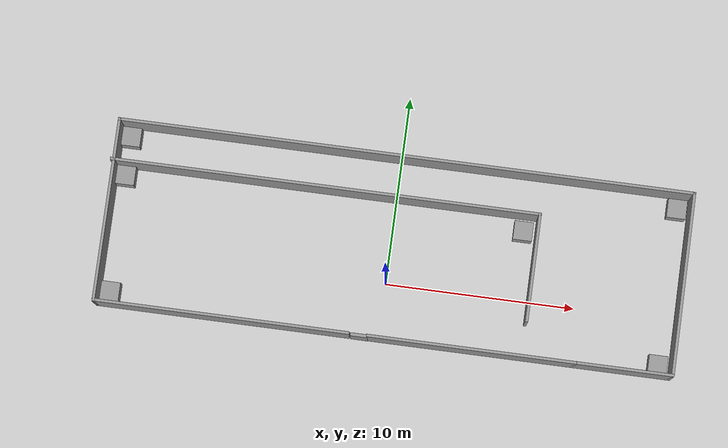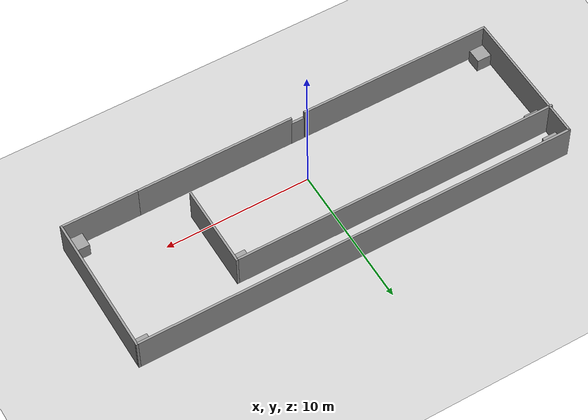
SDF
<sdf version="1.7">
 <world name="default">
  <light name="sun" type="directional">
   <pose>0 0 10 0 -0 0</pose>
   <diffuse>0.8 0.8 0.8 1</diffuse>
   <specular>0.2 0.2 0.2 1</specular>
   <attenuation>
    <range>1000</range>
    <constant>0.9</constant>
    <linear>0.01</linear>
    <quadratic>0.001</quadratic>
   </attenuation>
   <direction>-0.5 0.1 -0.9</direction>
   <spot><inner_angle>0</inner_angle><outer_angle>0</outer_angle><falloff>0</falloff></spot>
  </light>
  <model name="ground_plane">
   <static>1</static>
   <link name="link">
    <collision name="collision">
     <geometry><plane><normal>0 0 1</normal><size>100 100</size></plane></geometry>
     <surface>
      <contact><collide_bitmask>65535</collide_bitmask></contact>
      <friction><ode><mu>100</mu><mu2>50</mu2></ode></friction>
     </surface>
    </collision>
    <visual name="visual">
     <cast_shadows>0</cast_shadows>
     <geometry><plane><normal>0 0 1</normal><size>100 100</size></plane></geometry>
     <material>
      <script><uri>file://media/materials/scripts/gazebo.material</uri><name>Gazebo/Grey</name></script>
     </material>
    </visual>
   </link>
  </model>
  <gravity>0 0 -9.8</gravity>
  <magnetic_field>6e-06 2.3e-05 -4.2e-05</magnetic_field>
  <atmosphere type="adiabatic"/>
  <physics type="ode">
   <max_step_size>0.001</max_step_size>
   <real_time_factor>1</real_time_factor>
   <real_time_update_rate>1000</real_time_update_rate>
  </physics>
  <scene><ambient>0.4 0.4 0.4 1</ambient><background>0.7 0.7 0.7 1</background><shadows>1</shadows></scene>
  <spherical_coordinates>
   <surface_model>EARTH_WGS84</surface_model>
   <latitude_deg>0</latitude_deg>
   <longitude_deg>0</longitude_deg>
   <elevation>0</elevation>
   <heading_deg>0</heading_deg>
  </spherical_coordinates>
  <model name="ssss">
   <pose>0.167742 1.78339 0 0 -0 0</pose>
   <link name="Door_0">
    <collision name="Door_0_Collision">
     <geometry><box><size>0.9 0.17 2</size></box></geometry>
     <pose>0 0 1 0 -0 0</pose>
    </collision>
    <visual name="Door_0_Visual">
     <pose>0 0 1 0 -0 0</pose>
     <geometry><box><size>0.9 0.17 2</size></box></geometry>
     <material>
      <script><uri>file://media/materials/scripts/gazebo.material</uri><name>Gazebo/Grey</name></script>
     </material>
    </visual>
    <pose>-1.19415 -4.80067 0 0 -0 0</pose>
   </link>
   <link name="Wall_0">
    <collision name="Wall_0_Collision">
     <geometry><box><size>11 0.15 2.5</size></box></geometry>
     <pose>0 0 1.25 0 -0 0</pose>
    </collision>
    <visual name="Wall_0_Visual">
     <pose>0 0 1.25 0 -0 0</pose>
     <geometry><box><size>11 0.15 2.5</size></box></geometry>
     <material>
      <script><uri>file://media/materials/scripts/gazebo.material</uri><name>Gazebo/Grey</name></script>
      <ambient>1 1 1 1</ambient>
     </material>
     <meta><layer>0</layer></meta>
    </visual>
    <pose>4.70599 -4.8 0 0 -0 0</pose>
   </link>
   <link name="Wall_1">
    <collision name="Wall_1_Collision">
     <geometry><box><size>5.25 0.15 2.5</size></box></geometry>
     <pose>0 0 1.25 0 -0 0</pose>
    </collision>
    <visual name="Wall_1_Visual">
     <pose>0 0 1.25 0 -0 0</pose>
     <geometry><box><size>5.25 0.15 2.5</size></box></geometry>
     <material>
      <script><uri>file://media/materials/scripts/gazebo.material</uri><name>Gazebo/Grey</name></script>
      <ambient>1 1 1 1</ambient>
     </material>
     <meta><layer>0</layer></meta>
    </visual>
    <pose>12.681 -4.8 0 0 -0 0</pose>
   </link>
   <link name="Wall_2">
    <collision name="Wall_2_Collision">
     <geometry><box><size>9.75 0.15 2.5</size></box></geometry>
     <pose>0 0 1.25 0 -0 0</pose>
    </collision>
    <visual name="Wall_2_Visual">
     <pose>0 0 1.25 0 -0 0</pose>
     <geometry><box><size>9.75 0.15 2.5</size></box></geometry>
     <material>
      <script><uri>file://media/materials/scripts/gazebo.material</uri><name>Gazebo/Grey</name></script>
      <ambient>1 1 1 1</ambient>
     </material>
     <meta><layer>0</layer></meta>
    </visual>
    <pose>15.231 0 0 0 -0 1.5708</pose>
   </link>
   <link name="Wall_3">
    <collision name="Wall_3_Collision">
     <geometry><box><size>30.5 0.15 2.5</size></box></geometry>
     <pose>0 0 1.25 0 -0 0</pose>
    </collision>
    <visual name="Wall_3_Visual">
     <pose>0 0 1.25 0 -0 0</pose>
     <geometry><box><size>30.5 0.15 2.5</size></box></geometry>
     <material>
      <script><uri>file://media/materials/scripts/gazebo.material</uri><name>Gazebo/Grey</name></script>
      <ambient>1 1 1 1</ambient>
     </material>
     <meta><layer>0</layer></meta>
    </visual>
    <pose>0.055992 4.8 0 0 -0 3.14159</pose>
   </link>
   <link name="Wall_4">
    <collision name="Wall_4_Collision">
     <geometry><box><size>9.75 0.15 2.5</size></box></geometry>
     <pose>0 0 1.25 0 -0 0</pose>
    </collision>
    <visual name="Wall_4_Visual">
     <pose>0 0 1.25 0 -0 0</pose>
     <geometry><box><size>9.75 0.15 2.5</size></box></geometry>
     <material>
      <script><uri>file://media/materials/scripts/gazebo.material</uri><name>Gazebo/Grey</name></script>
      <ambient>1 1 1 1</ambient>
     </material>
     <meta><layer>0</layer></meta>
    </visual>
    <pose>-15.119 0 0 0 -0 -1.5708</pose>
   </link>
   <link name="Wall_5">
    <collision name="Wall_5_Collision">
     <geometry><box><size>13.5 0.15 2.5</size></box></geometry>
     <pose>0 0 1.25 0 -0 0</pose>
    </collision>
    <visual name="Wall_5_Visual">
     <pose>0 0 1.25 0 -0 0</pose>
     <geometry><box><size>13.5 0.15 2.5</size></box></geometry>
     <material>
      <script><uri>file://media/materials/scripts/gazebo.material</uri><name>Gazebo/Grey</name></script>
      <ambient>1 1 1 1</ambient>
     </material>
     <meta><layer>0</layer></meta>
    </visual>
    <pose>-8.44401 -4.8 0 0 -0 0</pose>
   </link>
   <link name="Wall_8">
    <collision name="Wall_8_Collision">
     <geometry><box><size>22.75 0.15 2.5</size></box></geometry>
     <pose>0 0 1.25 0 -0 0</pose>
    </collision>
    <visual name="Wall_8_Visual">
     <pose>0 0 1.25 0 -0 0</pose>
     <geometry><box><size>22.75 0.15 2.5</size></box></geometry>
     <material>
      <script><uri>file://media/materials/scripts/gazebo.material</uri><name>Gazebo/Grey</name></script>
      <ambient>1 1 1 1</ambient>
     </material>
     <meta><layer>0</layer></meta>
    </visual>
    <pose>-3.93099 2.66301 0 0 -0 0</pose>
   </link>
   <link name="Wall_9">
    <collision name="Wall_9_Collision">
     <geometry><box><size>5.75 0.15 2.5</size></box></geometry>
     <pose>0 0 1.25 0 -0 0</pose>
    </collision>
    <visual name="Wall_9_Visual">
     <pose>0 0 1.25 0 -0 0</pose>
     <geometry><box><size>5.75 0.15 2.5</size></box></geometry>
     <material>
      <script><uri>file://media/materials/scripts/gazebo.material</uri><name>Gazebo/Grey</name></script>
      <ambient>1 1 1 1</ambient>
     </material>
     <meta><layer>0</layer></meta>
    </visual>
    <pose>7.36901 -0.136989 0 0 -0 -1.5708</pose>
   </link>
   <static>1</static>
  </model>
  <model name="anchor">
   <link name="link_0">
    <inertial>
     <mass>1</mass>
     <inertia>
      <ixx>0.166667</ixx>
      <ixy>0</ixy>
      <ixz>0</ixz>
      <iyy>0.166667</iyy>
      <iyz>0</iyz>
      <izz>0.166667</izz>
     </inertia>
    </inertial>
    <pose>-4e-06 0 0 0 -0 0</pose>
    <visual name="visual">
     <geometry><box><size>1 1 1</size></box></geometry>
     <material>
      <lighting>1</lighting>
      <script><uri>file://media/materials/scripts/gazebo.material</uri><name>Gazebo/Grey</name></script>
      <shader type="pixel"/>
     </material>
    </visual>
    <collision name="collision">
     <geometry><box><size>1 1 1</size></box></geometry>
     <surface>
      <friction>
       <ode><mu>1</mu><mu2>1</mu2><fdir1>0 0 0</fdir1><slip1>0</slip1><slip2>0</slip2></ode>
       <torsional>
        <coefficient>1</coefficient>
        <patch_radius>0</patch_radius>
        <surface_radius>0</surface_radius>
        <use_patch_radius>1</use_patch_radius>
        <ode><slip>0</slip></ode>
       </torsional>
      </friction>
      <bounce><restitution_coefficient>0</restitution_coefficient><threshold>1e+06</threshold></bounce>
      <contact>
       <collide_without_contact>0</collide_without_contact>
       <collide_without_contact_bitmask>1</collide_without_contact_bitmask>
       <collide_bitmask>1</collide_bitmask>
       <ode>
        <soft_cfm>0</soft_cfm>
        <soft_erp>0.2</soft_erp>
        <kp>1e+13</kp>
        <kd>1</kd>
        <max_vel>0.01</max_vel>
        <min_depth>0</min_depth>
       </ode>
       <bullet>
        <split_impulse>1</split_impulse>
        <split_impulse_penetration_threshold>-0.01</split_impulse_penetration_threshold>
        <soft_cfm>0</soft_cfm>
        <soft_erp>0.2</soft_erp>
        <kp>1e+13</kp>
        <kd>1</kd>
       </bullet>
      </contact>
     </surface>
    </collision>
   </link>
   <static>0</static>
   <pose>-14.366 5.94497 0.5 0 -0 0</pose>
  </model>
  <model name="anchor_0">
   <link name="link_0">
    <inertial>
     <mass>1</mass>
     <inertia>
      <ixx>0.166667</ixx>
      <ixy>0</ixy>
      <ixz>0</ixz>
      <iyy>0.166667</iyy>
      <iyz>0</iyz>
      <izz>0.166667</izz>
     </inertia>
    </inertial>
    <pose>-4e-06 0 0 0 -0 0</pose>
    <visual name="visual">
     <geometry><box><size>1 1 1</size></box></geometry>
     <material>
      <lighting>1</lighting>
      <script><uri>file://media/materials/scripts/gazebo.material</uri><name>Gazebo/Grey</name></script>
      <shader type="pixel"/>
     </material>
    </visual>
    <collision name="collision">
     <geometry><box><size>1 1 1</size></box></geometry>
     <surface>
      <friction>
       <ode><mu>1</mu><mu2>1</mu2><fdir1>0 0 0</fdir1><slip1>0</slip1><slip2>0</slip2></ode>
       <torsional>
        <coefficient>1</coefficient>
        <patch_radius>0</patch_radius>
        <surface_radius>0</surface_radius>
        <use_patch_radius>1</use_patch_radius>
        <ode><slip>0</slip></ode>
       </torsional>
      </friction>
      <bounce><restitution_coefficient>0</restitution_coefficient><threshold>1e+06</threshold></bounce>
      <contact>
       <collide_without_contact>0</collide_without_contact>
       <collide_without_contact_bitmask>1</collide_without_contact_bitmask>
       <collide_bitmask>1</collide_bitmask>
       <ode>
        <soft_cfm>0</soft_cfm>
        <soft_erp>0.2</soft_erp>
        <kp>1e+13</kp>
        <kd>1</kd>
        <max_vel>0.01</max_vel>
        <min_depth>0</min_depth>
       </ode>
       <bullet>
        <split_impulse>1</split_impulse>
        <split_impulse_penetration_threshold>-0.01</split_impulse_penetration_threshold>
        <soft_cfm>0</soft_cfm>
        <soft_erp>0.2</soft_erp>
        <kp>1e+13</kp>
        <kd>1</kd>
       </bullet>
      </contact>
     </surface>
    </collision>
   </link>
   <static>0</static>
   <pose>14.7024 5.87613 0.5 0 -0 0</pose>
  </model>
  <model name="anchor_1">
   <link name="link_0">
    <inertial>
     <mass>1</mass>
     <inertia>
      <ixx>0.166667</ixx>
      <ixy>0</ixy>
      <ixz>0</ixz>
      <iyy>0.166667</iyy>
      <iyz>0</iyz>
      <izz>0.166667</izz>
     </inertia>
    </inertial>
    <pose>-4e-06 0 0 0 -0 0</pose>
    <visual name="visual">
     <geometry><box><size>1 1 1</size></box></geometry>
     <material>
      <lighting>1</lighting>
      <script><uri>file://media/materials/scripts/gazebo.material</uri><name>Gazebo/Grey</name></script>
      <shader type="pixel"/>
     </material>
    </visual>
    <collision name="collision">
     <geometry><box><size>1 1 1</size></box></geometry>
     <surface>
      <friction>
       <ode><mu>1</mu><mu2>1</mu2><fdir1>0 0 0</fdir1><slip1>0</slip1><slip2>0</slip2></ode>
       <torsional>
        <coefficient>1</coefficient>
        <patch_radius>0</patch_radius>
        <surface_radius>0</surface_radius>
        <use_patch_radius>1</use_patch_radius>
        <ode><slip>0</slip></ode>
       </torsional>
      </friction>
      <bounce><restitution_coefficient>0</restitution_coefficient><threshold>1e+06</threshold></bounce>
      <contact>
       <collide_without_contact>0</collide_without_contact>
       <collide_without_contact_bitmask>1</collide_without_contact_bitmask>
       <collide_bitmask>1</collide_bitmask>
       <ode>
        <soft_cfm>0</soft_cfm>
        <soft_erp>0.2</soft_erp>
        <kp>1e+13</kp>
        <kd>1</kd>
        <max_vel>0.01</max_vel>
        <min_depth>0</min_depth>
       </ode>
       <bullet>
        <split_impulse>1</split_impulse>
        <split_impulse_penetration_threshold>-0.01</split_impulse_penetration_threshold>
        <soft_cfm>0</soft_cfm>
        <soft_erp>0.2</soft_erp>
        <kp>1e+13</kp>
        <kd>1</kd>
       </bullet>
      </contact>
     </surface>
    </collision>
   </link>
   <static>0</static>
   <pose>14.6815 -2.43808 0.499995 1e-05 -0 0.00116</pose>
  </model>
  <model name="anchor_2">
   <link name="link_0">
    <inertial>
     <mass>1</mass>
     <inertia>
      <ixx>0.166667</ixx>
      <ixy>0</ixy>
      <ixz>0</ixz>
      <iyy>0.166667</iyy>
      <iyz>0</iyz>
      <izz>0.166667</izz>
     </inertia>
    </inertial>
    <pose>-4e-06 0 0 0 -0 0</pose>
    <visual name="visual">
     <geometry><box><size>1 1 1</size></box></geometry>
     <material>
      <lighting>1</lighting>
      <script><uri>file://media/materials/scripts/gazebo.material</uri><name>Gazebo/Grey</name></script>
      <shader type="pixel"/>
     </material>
    </visual>
    <collision name="collision">
     <geometry><box><size>1 1 1</size></box></geometry>
     <surface>
      <friction>
       <ode><mu>1</mu><mu2>1</mu2><fdir1>0 0 0</fdir1><slip1>0</slip1><slip2>0</slip2></ode>
       <torsional>
        <coefficient>1</coefficient>
        <patch_radius>0</patch_radius>
        <surface_radius>0</surface_radius>
        <use_patch_radius>1</use_patch_radius>
        <ode><slip>0</slip></ode>
       </torsional>
      </friction>
      <bounce><restitution_coefficient>0</restitution_coefficient><threshold>1e+06</threshold></bounce>
      <contact>
       <collide_without_contact>0</collide_without_contact>
       <collide_without_contact_bitmask>1</collide_without_contact_bitmask>
       <collide_bitmask>1</collide_bitmask>
       <ode>
        <soft_cfm>0</soft_cfm>
        <soft_erp>0.2</soft_erp>
        <kp>1e+13</kp>
        <kd>1</kd>
        <max_vel>0.01</max_vel>
        <min_depth>0</min_depth>
       </ode>
       <bullet>
        <split_impulse>1</split_impulse>
        <split_impulse_penetration_threshold>-0.01</split_impulse_penetration_threshold>
        <soft_cfm>0</soft_cfm>
        <soft_erp>0.2</soft_erp>
        <kp>1e+13</kp>
        <kd>1</kd>
       </bullet>
      </contact>
     </surface>
    </collision>
   </link>
   <static>0</static>
   <pose>-14.3296 -2.32629 0.5 0 -0 0</pose>
  </model>
  <model name="anchor_3">
   <link name="link_0">
    <inertial>
     <mass>1</mass>
     <inertia>
      <ixx>0.166667</ixx>
      <ixy>0</ixy>
      <ixz>0</ixz>
      <iyy>0.166667</iyy>
      <iyz>0</iyz>
      <izz>0.166667</izz>
     </inertia>
    </inertial>
    <pose>-4e-06 0 0 0 -0 0</pose>
    <visual name="visual">
     <geometry><box><size>1 1 1</size></box></geometry>
     <material>
      <lighting>1</lighting>
      <script><uri>file://media/materials/scripts/gazebo.material</uri><name>Gazebo/Grey</name></script>
      <shader type="pixel"/>
     </material>
    </visual>
    <collision name="collision">
     <geometry><box><size>1 1 1</size></box></geometry>
     <surface>
      <friction>
       <ode><mu>1</mu><mu2>1</mu2><fdir1>0 0 0</fdir1><slip1>0</slip1><slip2>0</slip2></ode>
       <torsional>
        <coefficient>1</coefficient>
        <patch_radius>0</patch_radius>
        <surface_radius>0</surface_radius>
        <use_patch_radius>1</use_patch_radius>
        <ode><slip>0</slip></ode>
       </torsional>
      </friction>
      <bounce><restitution_coefficient>0</restitution_coefficient><threshold>1e+06</threshold></bounce>
      <contact>
       <collide_without_contact>0</collide_without_contact>
       <collide_without_contact_bitmask>1</collide_without_contact_bitmask>
       <collide_bitmask>1</collide_bitmask>
       <ode>
        <soft_cfm>0</soft_cfm>
        <soft_erp>0.2</soft_erp>
        <kp>1e+13</kp>
        <kd>1</kd>
        <max_vel>0.01</max_vel>
        <min_depth>0</min_depth>
       </ode>
       <bullet>
        <split_impulse>1</split_impulse>
        <split_impulse_penetration_threshold>-0.01</split_impulse_penetration_threshold>
        <soft_cfm>0</soft_cfm>
        <soft_erp>0.2</soft_erp>
        <kp>1e+13</kp>
        <kd>1</kd>
       </bullet>
      </contact>
     </surface>
    </collision>
   </link>
   <static>0</static>
   <pose>6.81214 3.66192 0.5 0 -0 0</pose>
  </model>
  <model name="anchor_4">
   <link name="link_0">
    <inertial>
     <mass>1</mass>
     <inertia>
      <ixx>0.166667</ixx>
      <ixy>0</ixy>
      <ixz>0</ixz>
      <iyy>0.166667</iyy>
      <iyz>0</iyz>
      <izz>0.166667</izz>
     </inertia>
    </inertial>
    <pose>-4e-06 0 0 0 -0 0</pose>
    <visual name="visual">
     <geometry><box><size>1 1 1</size></box></geometry>
     <material>
      <lighting>1</lighting>
      <script><uri>file://media/materials/scripts/gazebo.material</uri><name>Gazebo/Grey</name></script>
      <shader type="pixel"/>
     </material>
    </visual>
    <collision name="collision">
     <geometry><box><size>1 1 1</size></box></geometry>
     <surface>
      <friction>
       <ode><mu>1</mu><mu2>1</mu2><fdir1>0 0 0</fdir1><slip1>0</slip1><slip2>0</slip2></ode>
       <torsional>
        <coefficient>1</coefficient>
        <patch_radius>0</patch_radius>
        <surface_radius>0</surface_radius>
        <use_patch_radius>1</use_patch_radius>
        <ode><slip>0</slip></ode>
       </torsional>
      </friction>
      <bounce><restitution_coefficient>0</restitution_coefficient><threshold>1e+06</threshold></bounce>
      <contact>
       <collide_without_contact>0</collide_without_contact>
       <collide_without_contact_bitmask>1</collide_without_contact_bitmask>
       <collide_bitmask>1</collide_bitmask>
       <ode>
        <soft_cfm>0</soft_cfm>
        <soft_erp>0.2</soft_erp>
        <kp>1e+13</kp>
        <kd>1</kd>
        <max_vel>0.01</max_vel>
        <min_depth>0</min_depth>
       </ode>
       <bullet>
        <split_impulse>1</split_impulse>
        <split_impulse_penetration_threshold>-0.01</split_impulse_penetration_threshold>
        <soft_cfm>0</soft_cfm>
        <soft_erp>0.2</soft_erp>
        <kp>1e+13</kp>
        <kd>1</kd>
       </bullet>
      </contact>
     </surface>
    </collision>
   </link>
   <static>0</static>
   <pose>-14.3799 3.87398 0.497552 -0.002296 -0.000736 0.000727</pose>
  </model>
  <plugin name="libgtec_uwb_plugin" filename="libgtec_uwb_plugin.so">
   <update_rate>25</update_rate>
   <nlosSoftWallWidth>0.25</nlosSoftWallWidth>
   <tag_z_offset>1.5</tag_z_offset>
   <tag_link>tag_0</tag_link>
   <anchor_prefix>uwb_anchor</anchor_prefix>
   <all_los>false</all_los>
   <tag_id>0</tag_id>
  </plugin>
 </world>
</sdf>
